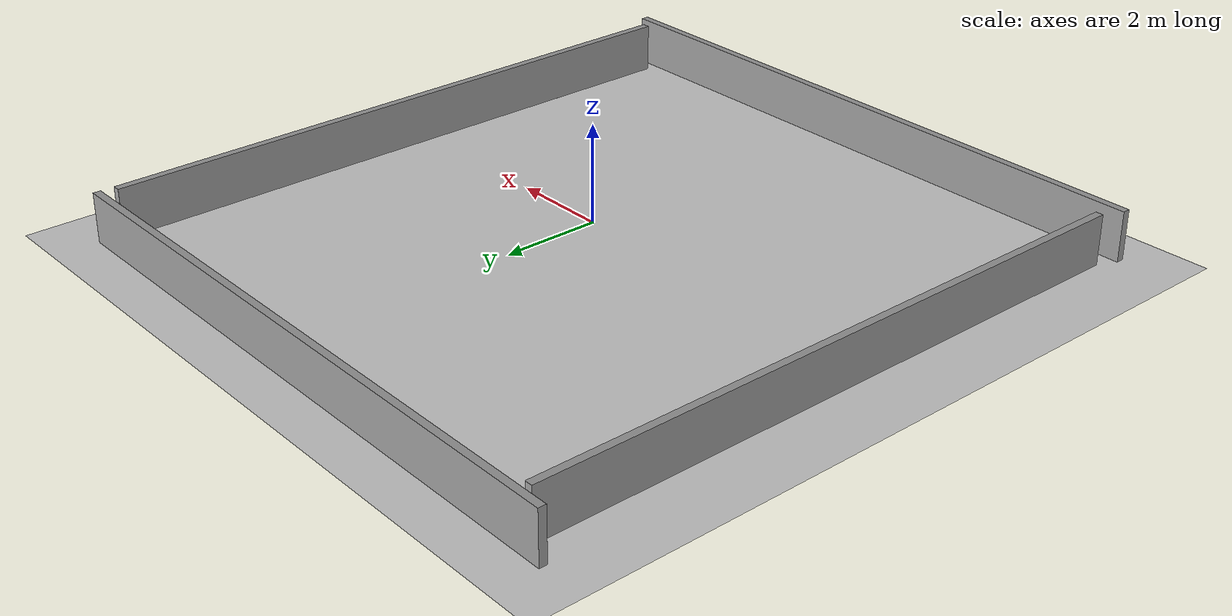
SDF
<sdf version="1.6">
 <world name="default">
  <light name="sun" type="directional">
   <pose>0 0 10 0 -0 0</pose>
   <diffuse>0.8 0.8 0.8 1</diffuse>
   <specular>0.2 0.2 0.2 1</specular>
   <attenuation>
    <range>1000</range>
    <constant>0.9</constant>
    <linear>0.01</linear>
    <quadratic>0.001</quadratic>
   </attenuation>
   <direction>-0.5 0.1 -0.9</direction>
   <spot><inner_angle>0</inner_angle><outer_angle>0</outer_angle><falloff>0</falloff></spot>
  </light>
  <model name="ground_plane">
   <static>1</static>
   <link name="link">
    <collision name="collision">
     <geometry><plane><normal>0 0 1</normal><size>100 100</size></plane></geometry>
     <surface><friction><ode><mu>100</mu><mu2>50</mu2></ode></friction></surface>
    </collision>
    <visual name="visual">
     <cast_shadows>0</cast_shadows>
     <geometry><plane><normal>0 0 1</normal><size>100 100</size></plane></geometry>
     <material>
      <script><uri>file://media/materials/scripts/gazebo.material</uri><name>Gazebo/Grey</name></script>
     </material>
    </visual>
   </link>
  </model>
  <gravity>0 0 -9.8</gravity>
  <magnetic_field>6e-06 2.3e-05 -4.2e-05</magnetic_field>
  <atmosphere type="adiabatic"/>
  <physics type="ode">
   <max_step_size>0.001</max_step_size>
   <real_time_factor>1</real_time_factor>
   <real_time_update_rate>1000</real_time_update_rate>
  </physics>
  <scene><ambient>0.4 0.4 0.4 1</ambient><background>0.7 0.7 0.7 1</background><shadows>1</shadows></scene>
  <spherical_coordinates>
   <surface_model>EARTH_WGS84</surface_model>
   <latitude_deg>0</latitude_deg>
   <longitude_deg>0</longitude_deg>
   <elevation>0</elevation>
   <heading_deg>0</heading_deg>
  </spherical_coordinates>
  <model name="walls">
   <link name="link">
    <inertial>
     <mass>1.96774</mass>
     <inertia><ixx>27.2968</ixx><ixy>0</ixy><ixz>0</ixz><iyy>0.167815</iyy><iyz>0</iyz><izz>27.1366</izz></inertia>
    </inertial>
    <pose>-2.35629 0 0 0 -0 0</pose>
    <visual name="visual">
     <geometry><box><size>0.152951 12.8633 1</size></box></geometry>
     <material>
      <script><name>Gazebo/Grey</name><uri>file://media/materials/scripts/gazebo.material</uri></script>
      <shader type="pixel"/>
     </material>
    </visual>
    <collision name="collision">
     <geometry><box><size>0.152951 12.8633 1</size></box></geometry>
     <surface>
      <friction>
       <ode><mu>1</mu><mu2>1</mu2><fdir1>0 0 0</fdir1><slip1>0</slip1><slip2>0</slip2></ode>
       <torsional>
        <coefficient>1</coefficient>
        <patch_radius>0</patch_radius>
        <surface_radius>0</surface_radius>
        <use_patch_radius>1</use_patch_radius>
        <ode><slip>0</slip></ode>
       </torsional>
      </friction>
      <bounce><restitution_coefficient>0</restitution_coefficient><threshold>1e+06</threshold></bounce>
      <contact>
       <collide_without_contact>0</collide_without_contact>
       <collide_without_contact_bitmask>1</collide_without_contact_bitmask>
       <collide_bitmask>1</collide_bitmask>
       <ode>
        <soft_cfm>0</soft_cfm>
        <soft_erp>0.2</soft_erp>
        <kp>1e+13</kp>
        <kd>1</kd>
        <max_vel>0.01</max_vel>
        <min_depth>0</min_depth>
       </ode>
       <bullet>
        <split_impulse>1</split_impulse>
        <split_impulse_penetration_threshold>-0.01</split_impulse_penetration_threshold>
        <soft_cfm>0</soft_cfm>
        <soft_erp>0.2</soft_erp>
        <kp>1e+13</kp>
        <kd>1</kd>
       </bullet>
      </contact>
     </surface>
    </collision>
   </link>
   <link name="link_clone">
    <inertial>
     <mass>1.96774</mass>
     <inertia><ixx>27.2968</ixx><ixy>0</ixy><ixz>0</ixz><iyy>0.167815</iyy><iyz>0</iyz><izz>27.1366</izz></inertia>
    </inertial>
    <pose>9.87529 -0.164113 -0 0 -0 0</pose>
    <visual name="visual">
     <geometry><box><size>0.152951 12.8633 1</size></box></geometry>
     <material>
      <script><name>Gazebo/Grey</name><uri>file://media/materials/scripts/gazebo.material</uri></script>
      <shader type="pixel"/>
     </material>
    </visual>
    <collision name="collision">
     <geometry><box><size>0.152951 12.8633 1</size></box></geometry>
     <surface>
      <friction>
       <ode><mu>1</mu><mu2>1</mu2><fdir1>0 0 0</fdir1><slip1>0</slip1><slip2>0</slip2></ode>
       <torsional>
        <coefficient>1</coefficient>
        <patch_radius>0</patch_radius>
        <surface_radius>0</surface_radius>
        <use_patch_radius>1</use_patch_radius>
        <ode><slip>0</slip></ode>
       </torsional>
      </friction>
      <bounce><restitution_coefficient>0</restitution_coefficient><threshold>1e+06</threshold></bounce>
      <contact>
       <collide_without_contact>0</collide_without_contact>
       <collide_without_contact_bitmask>1</collide_without_contact_bitmask>
       <collide_bitmask>1</collide_bitmask>
       <ode>
        <soft_cfm>0</soft_cfm>
        <soft_erp>0.2</soft_erp>
        <kp>1e+13</kp>
        <kd>1</kd>
        <max_vel>0.01</max_vel>
        <min_depth>0</min_depth>
       </ode>
       <bullet>
        <split_impulse>1</split_impulse>
        <split_impulse_penetration_threshold>-0.01</split_impulse_penetration_threshold>
        <soft_cfm>0</soft_cfm>
        <soft_erp>0.2</soft_erp>
        <kp>1e+13</kp>
        <kd>1</kd>
       </bullet>
      </contact>
     </surface>
    </collision>
   </link>
   <link name="link_clone_0">
    <inertial>
     <mass>1.96774</mass>
     <inertia><ixx>27.2968</ixx><ixy>0</ixy><ixz>0</ixz><iyy>0.167815</iyy><iyz>0</iyz><izz>27.1366</izz></inertia>
    </inertial>
    <pose>3.82249 -6.88956 -0 0 0 -1.57254</pose>
    <visual name="visual">
     <geometry><box><size>0.152951 12.8633 1</size></box></geometry>
     <material>
      <script><name>Gazebo/Grey</name><uri>file://media/materials/scripts/gazebo.material</uri></script>
      <shader type="pixel"/>
     </material>
    </visual>
    <collision name="collision">
     <geometry><box><size>0.152951 12.8633 1</size></box></geometry>
     <surface>
      <friction>
       <ode><mu>1</mu><mu2>1</mu2><fdir1>0 0 0</fdir1><slip1>0</slip1><slip2>0</slip2></ode>
       <torsional>
        <coefficient>1</coefficient>
        <patch_radius>0</patch_radius>
        <surface_radius>0</surface_radius>
        <use_patch_radius>1</use_patch_radius>
        <ode><slip>0</slip></ode>
       </torsional>
      </friction>
      <bounce><restitution_coefficient>0</restitution_coefficient><threshold>1e+06</threshold></bounce>
      <contact>
       <collide_without_contact>0</collide_without_contact>
       <collide_without_contact_bitmask>1</collide_without_contact_bitmask>
       <collide_bitmask>1</collide_bitmask>
       <ode>
        <soft_cfm>0</soft_cfm>
        <soft_erp>0.2</soft_erp>
        <kp>1e+13</kp>
        <kd>1</kd>
        <max_vel>0.01</max_vel>
        <min_depth>0</min_depth>
       </ode>
       <bullet>
        <split_impulse>1</split_impulse>
        <split_impulse_penetration_threshold>-0.01</split_impulse_penetration_threshold>
        <soft_cfm>0</soft_cfm>
        <soft_erp>0.2</soft_erp>
        <kp>1e+13</kp>
        <kd>1</kd>
       </bullet>
      </contact>
     </surface>
    </collision>
   </link>
   <link name="link_clone_0_clone">
    <inertial>
     <mass>1.96774</mass>
     <inertia><ixx>27.2968</ixx><ixy>0</ixy><ixz>0</ixz><iyy>0.167815</iyy><iyz>0</iyz><izz>27.1366</izz></inertia>
    </inertial>
    <pose>3.52608 6.61784 0 0 0 -1.57254</pose>
    <visual name="visual">
     <geometry><box><size>0.152951 12.8633 1</size></box></geometry>
     <material>
      <script><name>Gazebo/Grey</name><uri>file://media/materials/scripts/gazebo.material</uri></script>
      <shader type="pixel"/>
     </material>
    </visual>
    <collision name="collision">
     <geometry><box><size>0.152951 12.8633 1</size></box></geometry>
     <surface>
      <friction>
       <ode><mu>1</mu><mu2>1</mu2><fdir1>0 0 0</fdir1><slip1>0</slip1><slip2>0</slip2></ode>
       <torsional>
        <coefficient>1</coefficient>
        <patch_radius>0</patch_radius>
        <surface_radius>0</surface_radius>
        <use_patch_radius>1</use_patch_radius>
        <ode><slip>0</slip></ode>
       </torsional>
      </friction>
      <bounce><restitution_coefficient>0</restitution_coefficient><threshold>1e+06</threshold></bounce>
      <contact>
       <collide_without_contact>0</collide_without_contact>
       <collide_without_contact_bitmask>1</collide_without_contact_bitmask>
       <collide_bitmask>1</collide_bitmask>
       <ode>
        <soft_cfm>0</soft_cfm>
        <soft_erp>0.2</soft_erp>
        <kp>1e+13</kp>
        <kd>1</kd>
        <max_vel>0.01</max_vel>
        <min_depth>0</min_depth>
       </ode>
       <bullet>
        <split_impulse>1</split_impulse>
        <split_impulse_penetration_threshold>-0.01</split_impulse_penetration_threshold>
        <soft_cfm>0</soft_cfm>
        <soft_erp>0.2</soft_erp>
        <kp>1e+13</kp>
        <kd>1</kd>
       </bullet>
      </contact>
     </surface>
    </collision>
   </link>
   <static>0</static>
   <pose>-4.69118 0.68449 0.500004 0 -2e-06 -8e-06</pose>
  </model>
 </world>
</sdf>
